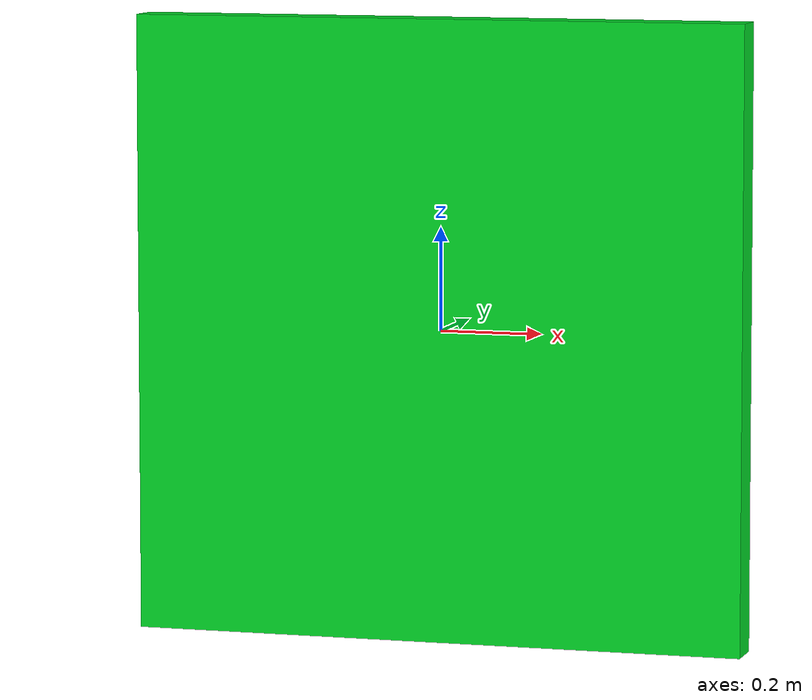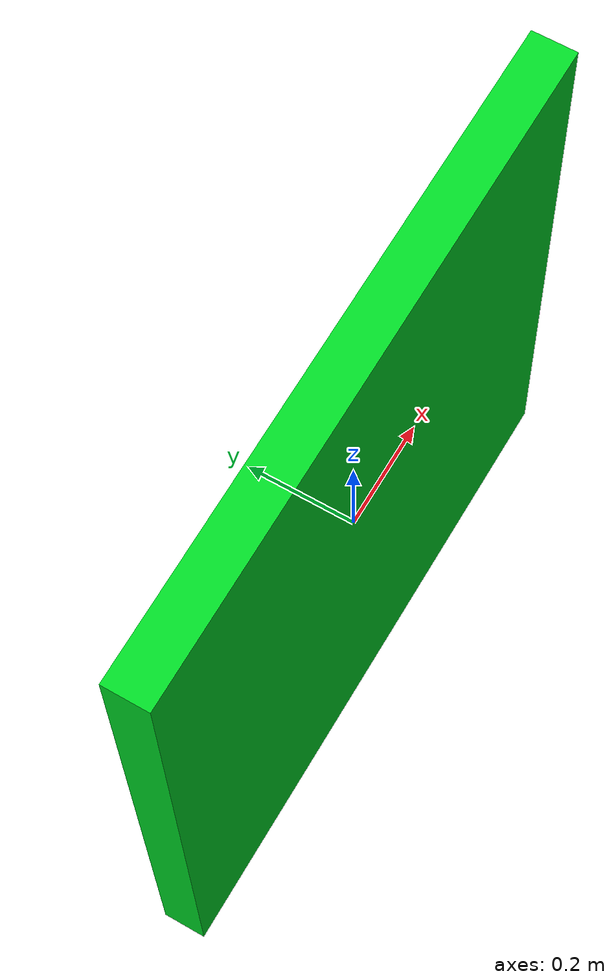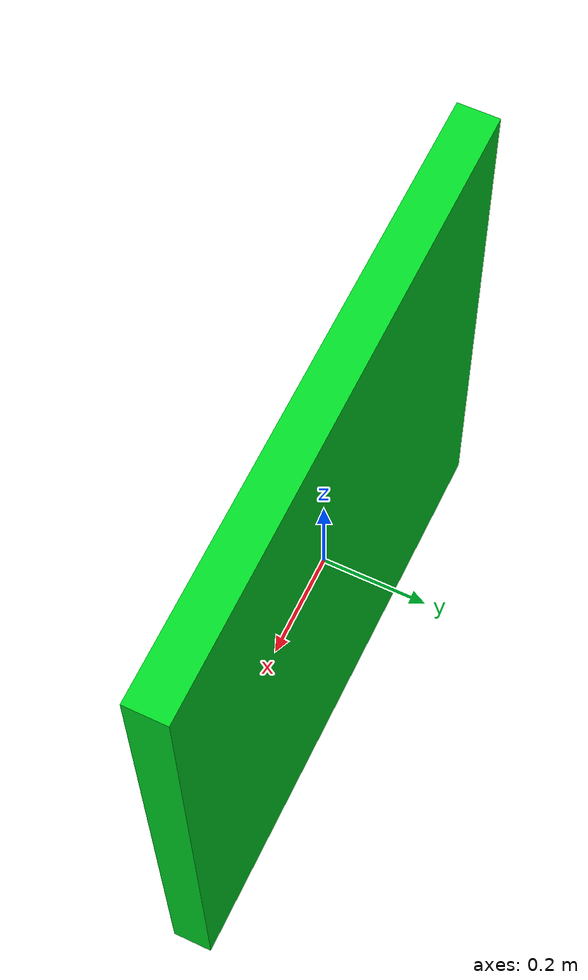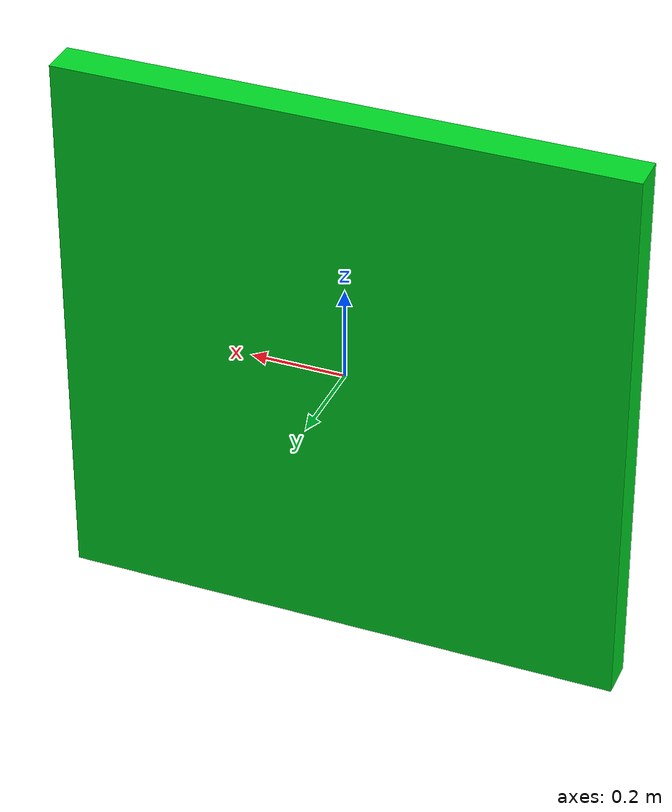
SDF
<?xml version="1.0"?>
<sdf version="1.10">
  <model name="virtual-observation-target">
    <static>true</static>
    <link name="target_panel">
      <visual name="target_pattern">
        <geometry>
          <box>
            <size>1.2 0.08 1.2</size>
          </box>
        </geometry>
        <material>
          <ambient>0.0 0.85 0.15 1</ambient>
          <diffuse>0.0 0.85 0.15 1</diffuse>
          <specular>0.8 0.8 0.8 1</specular>
        </material>
      </visual>
      <collision name="target_collision">
        <geometry>
          <box>
            <size>1.2 0.08 1.2</size>
          </box>
        </geometry>
      </collision>
    </link>
  </model>
</sdf>
